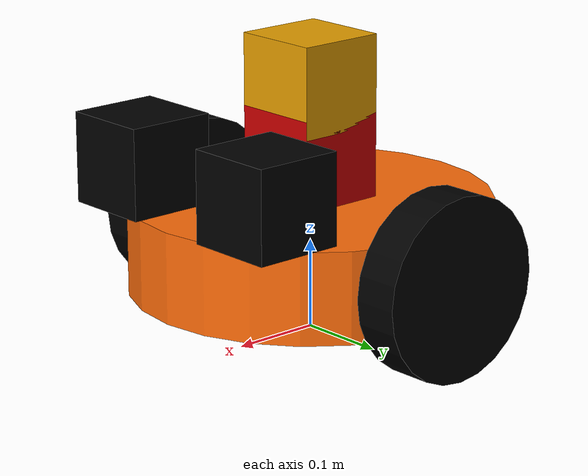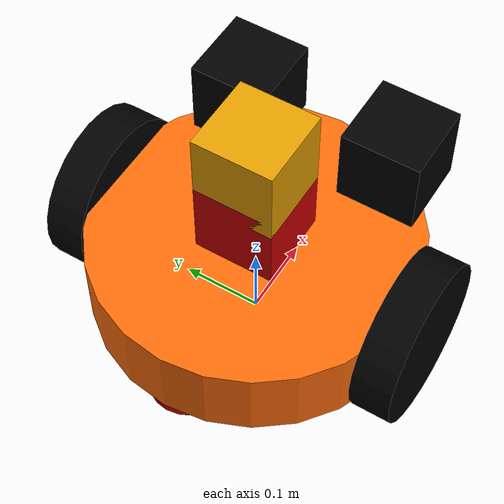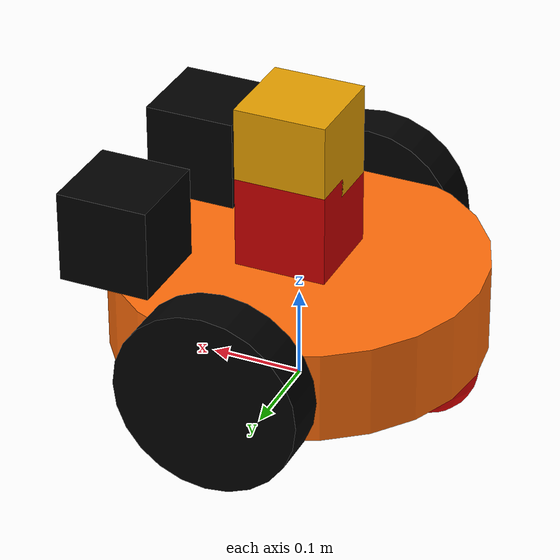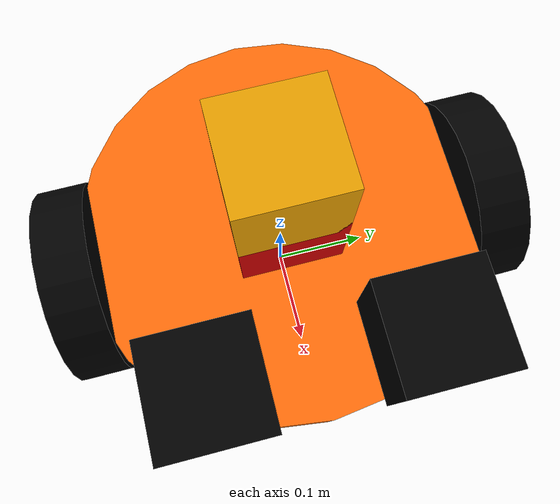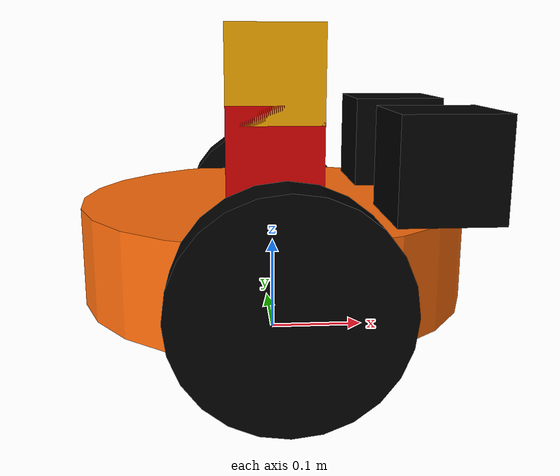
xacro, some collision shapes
<?xml version="1.0"?>

<robot name="robot_model" xmlns:xacro="http://www.ros.org/wiki/xacro">
 <xacro:arg name="nsp" default="h0" />
<xacro:arg name="nsp" default="h0_tf" />

<xacro:property name="PI" value="3.1415926535897931"/>

<xacro:property name="chassisHeight" value="0.1"/>
<xacro:property name="chassisLength" value="0.4"/>
<xacro:property name="chassisWidth" value="0.2"/>
<xacro:property name="chassisMass" value="50"/>

<xacro:property name="casterRadius" value="0.05"/>
<xacro:property name="casterMass" value="5"/>

<xacro:property name="wheelWidth" value="0.05"/>
<xacro:property name="wheelRadius" value="0.1"/>
<xacro:property name="wheelPos" value="0.2"/>
<xacro:property name="wheelMass" value="5"/>

<xacro:property name="cameraSize" value="0.05"/>
<xacro:property name="cameraMass" value="0.1"/>

 <xacro:include filename="$(find mybot_description)/urdf/mybot.gazebo" />
 <xacro:include filename="$(find mybot_description)/urdf/materials.xacro" />
 <xacro:include filename="$(find mybot_description)/urdf/macros.xacro" />

<link name='$(arg nsp)/footprint'/>

<joint name="$(arg nsp)/base_joint" type="fixed">
  <parent link="$(arg nsp)/footprint"/>
  <child link="$(arg nsp)/chassis"/>
</joint>

<link name='$(arg nsp)/chassis'>
  <collision>
    <origin xyz="0 0 ${wheelRadius}" rpy="0 0 0"/>
    <geometry>
      <cylinder length="0.1" radius="0.2"/>
    </geometry>
  </collision>
  <visual>
    <origin xyz="0 0 ${wheelRadius}" rpy="0 0 0"/>
    <geometry>
       <cylinder length="0.1" radius="0.2"/>
    </geometry>
    <material name="orange"/>
  </visual>
  <inertial>
    <origin xyz="0 0 ${wheelRadius}" rpy="0 0 0"/>
    <mass value="${chassisMass}"/>
    <cylinder_inertia m="${chassisMass}" r="0.2" h="0.1"/>
  </inertial>
</link>

<link name="$(arg nsp)/caster_wheel">
  <collision>
    <origin xyz="${casterRadius-chassisLength/2} 0 ${casterRadius-chassisHeight+wheelRadius}" rpy="0 0 0"/>
    <geometry>
      <sphere radius="${casterRadius}"/>
    </geometry>
  </collision>

  <visual>
    <origin xyz="${casterRadius-chassisLength/2} 0 ${casterRadius-chassisHeight+wheelRadius}" rpy="0 0 0"/>
    <geometry>
      <sphere radius="${casterRadius}"/>
    </geometry>
    <material name="red"/>
  </visual>

  <inertial>
    <origin xyz="${casterRadius-chassisLength/2} 0 ${casterRadius-chassisHeight+wheelRadius}" rpy="0 0 0"/>
    <mass value="${casterMass}"/>
    <sphere_inertia m="${casterMass}" r="${casterRadius}"/>
  </inertial>
</link>

<joint name="$(arg nsp)/fixed" type="fixed">
  <parent link="$(arg nsp)/chassis"/>
  <child link="$(arg nsp)/caster_wheel"/>
</joint>

<wheel lr="right" tY="-1.65"/>
<wheel lr="left" tY="1.65"/>

<link name="$(arg nsp)/sensor_base">
  <collision>
    <origin xyz="0 0 0.2 " rpy="0 0 0"/>
    <geometry>
      <box size="0.1 0.1 0.1"/>
    </geometry>
  </collision>

  <visual>
    <origin xyz="0 0 0.2" rpy="0 0 0"/>
    <geometry>
      <box size="0.1 0.1 0.1"/>
    </geometry>
    <material name="red"/>
  </visual>

  <inertial>
    <origin xyz="0 0 0.2" rpy="0 0 0"/>
    <mass value="1"/>
    <inertia ixx="1" ixy="0" ixz="0" iyy="1" iyz="0" izz="1" />
  </inertial>
</link>

<joint name="$(arg nsp)/sensor_base" type="fixed">
  <parent link="$(arg nsp)/chassis"/>
  <child link="$(arg nsp)/sensor_base"/>
</joint>

  <joint name="$(arg nsp)/light_sensor_joint" type="fixed">
    <axis xyz="0 1 0" />
    <origin xyz="0.15 -0.1 0.2" rpy="0 0 3.14"/>
    <parent link="$(arg nsp)/chassis"/>
    <child link="$(arg nsp)/light_sensor"/>
  </joint>

  <joint name="$(arg nsp)/light_sensor_joint_second" type="fixed">
    <axis xyz="0 1 0" />
    <origin xyz="0.15 0.1 0.2" rpy="0 0 3.14"/>
    <parent link="$(arg nsp)/chassis"/>
    <child link="$(arg nsp)/light_sensor_second"/>
  </joint>

  <!-- Light Sensor A -->
  <link name="$(arg nsp)/light_sensor">
    <collision>
      <origin xyz="0 0 0" rpy="0 0 0"/>
      <geometry>
    <box size="0.1 0.1 0.1"/>
      </geometry>
    </collision>

    <visual>
      <origin xyz="0 0 0" rpy="0 0 0"/>
      <geometry>
       <box size="0.1 0.1 0.1"/>
      </geometry>
      <material name="black"/>
    </visual>

    <inertial>
      <mass value="1e-5" />
      <origin xyz="0 0 0" rpy="0 0 0"/>
      <inertia ixx="1e-6" ixy="0" ixz="0" iyy="1e-6" iyz="0" izz="1e-6" />
    </inertial>
  </link>

  <!-- Light Sensor B -->
  <link name="$(arg nsp)/light_sensor_second">
    <collision>
      <origin xyz="0 0 0" rpy="0 0 0"/>
      <geometry>
    <box size="0.1 0.1 0.1"/>
      </geometry>
    </collision>

    <visual>
      <origin xyz="0 0 0" rpy="0 0 0"/>
      <geometry>
       <box size="0.1 0.1 0.1"/>
      </geometry>
      <material name="black"/>
    </visual>

    <inertial>
      <mass value="1e-5" />
      <origin xyz="0 0 0" rpy="0 0 0"/>
      <inertia ixx="1e-6" ixy="0" ixz="0" iyy="1e-6" iyz="0" izz="1e-6" />
    </inertial>
  </link>

  <joint name="$(arg nsp)/hokuyo_joint_0" type="fixed">
    <axis xyz="0 1 0" />
    <origin xyz="0 0 0.28" rpy="0 0 0"/>
    <parent link="$(arg nsp)/sensor_base"/>
    <child link="$(arg nsp)/hokuyo_link_0"/>
  </joint>

  <!-- Hokuyo Laser -->
  <link name="$(arg nsp)/hokuyo_link_0">
    <collision>
      <origin xyz="0 0 0" rpy="0 0 0"/>
      <geometry>
    <box size="0.1 0.1 0.1"/>
      </geometry>
    </collision>

    <visual>
      <origin xyz="0 0 0" rpy="0 0 0"/>
      <geometry>
        <mesh filename="package://mybot_description/meshes/hokuyo.dae"/>
      </geometry>
    </visual>

    <inertial>
      <mass value="1e-5" />
      <origin xyz="0 0 0" rpy="0 0 0"/>
      <inertia ixx="1e-6" ixy="0" ixz="0" iyy="1e-6" iyz="0" izz="1e-6" />
    </inertial>
  </link>

</robot>

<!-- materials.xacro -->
<robot name="robot_model" xmlns:xacro="http://www.ros.org/wiki/xacro">
 <xacro:arg name="nsp" default="h0" />
<xacro:arg name="tfpre" default="h0_tf" />

<material name="black">
  <color rgba="0.0 0.0 0.0 1.0"/>
</material>

<material name="blue">
  <color rgba="0.0 0.0 0.8 1.0"/>
</material>

<material name="green">
  <color rgba="0.0 0.8 0.0 1.0"/>
</material>

<material name="grey">
  <color rgba="0.2 0.2 0.2 1.0"/>
</material>

<material name="orange">
  <color rgba="${255/255} ${108/255} ${10/255} 1.0"/>
</material>

<material name="brown">
  <color rgba="${222/255} ${207/255} ${195/255} 1.0"/>
</material>

<material name="red">
  <color rgba="0.8 0.0 0.0 1.0"/>
</material>

<material name="white">
  <color rgba="1.0 1.0 1.0 1.0"/>
</material>

</robot>

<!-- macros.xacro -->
<robot  name="robot_model" xmlns:xacro="http://www.ros.org/wiki/xacro">
 <xacro:arg name="nsp" default="h0" />
<xacro:arg name="nsp" default="h0_tf" />

<macro name="cylinder_inertia" params="m r h">
  <inertia  ixx="${m*(3*r*r+h*h)/12}" ixy = "0" ixz = "0"
    iyy="${m*(3*r*r+h*h)/12}" iyz = "0"
    izz="${m*r*r/2}"
  />
</macro>

<macro name="box_inertia" params="m x y z">
  <inertia  ixx="${m*(y*y+z*z)/12}" ixy = "0" ixz = "0"
    iyy="${m*(x*x+z*z)/12}" iyz = "0"
    izz="${m*(x*x+z*z)/12}"
  />
</macro>

<macro name="sphere_inertia" params="m r">
  <inertia  ixx="${2*m*r*r/5}" ixy = "0" ixz = "0"
    iyy="${2*m*r*r/5}" iyz = "0"
    izz="${2*m*r*r/5}"
  />
</macro>

<macro name="wheel" params="lr tY">

<link name="$(arg nsp)/${lr}_wheel">
  <collision>
    <origin xyz="0 0 0" rpy="0 ${PI/2} ${PI/2}" />
    <geometry>
      <cylinder length="${wheelWidth}" radius="${wheelRadius}"/>
    </geometry>
  </collision>

  <visual>
    <origin xyz="0 0 0" rpy="0 ${PI/2} ${PI/2}" />
    <geometry>
      <cylinder length="${wheelWidth}" radius="${wheelRadius}"/>
    </geometry>
    <material name="black"/>
  </visual>

  <inertial>
    <origin xyz="0 0 0" rpy="0 ${PI/2} ${PI/2}" />
    <mass value="${wheelMass}"/>
    <cylinder_inertia m="${wheelMass}" r="${wheelRadius}" h="${wheelWidth}"/>
  </inertial>
</link>

<gazebo reference="$(arg nsp)/${lr}_wheel">
  <mu1 value="1.0"/>
  <mu2 value="1.0"/>
  <kp  value="10000000.0" />
  <kd  value="1.0" />
  <fdir1 value="1 0 0"/>
  <material>Gazebo/Black</material>
</gazebo>

<joint name="${lr}_wheel_hinge" type="continuous">
  <parent link="$(arg nsp)/chassis"/>
  <child link="$(arg nsp)/${lr}_wheel"/>
<origin xyz="${-wheelPos+chassisLength/2} ${tY*wheelWidth/2+tY*chassisWidth/2} ${wheelRadius}" rpy="0 0 0" />
  <axis xyz="0 1 0" rpy="0 0 0" />
  <limit effort="100" velocity="100"/>
  <joint_properties damping="0.0" friction="0.0"/>
</joint>

<transmission name="$(arg nsp)/${lr}_transs">
  <type>transmission_interface/SimpleTransmission</type>
  <joint name="$(arg nsp)/${lr}_wheel_hinge">
    <hardwareInterface>EffortJointInterface</hardwareInterface>
  </joint>
  <actuator name="$(arg nsp)/${lr}Motor">
    <mechanicalReduction>10</mechanicalReduction>
    <hardwareInterface>EffortJointInterface</hardwareInterface>
  </actuator>
</transmission>
</macro>

</robot>
